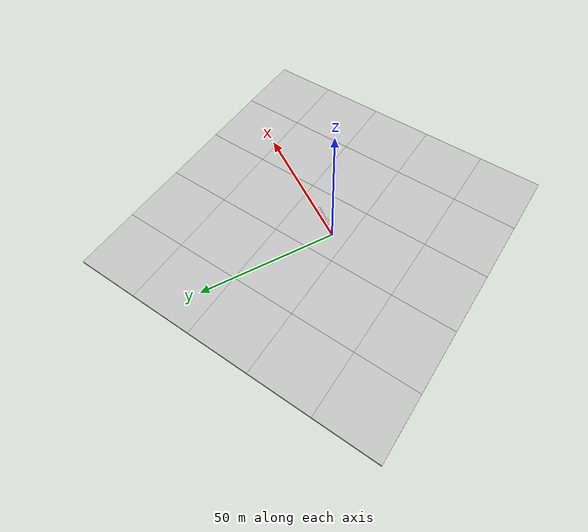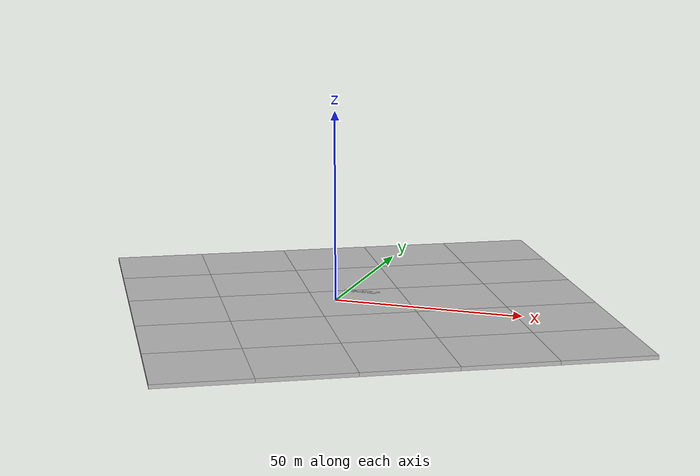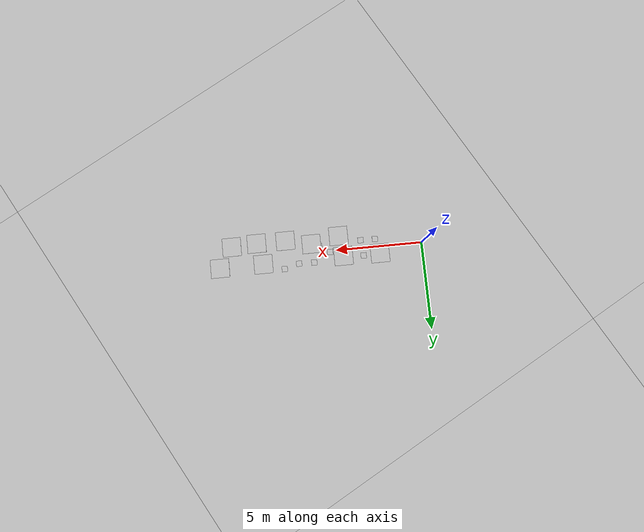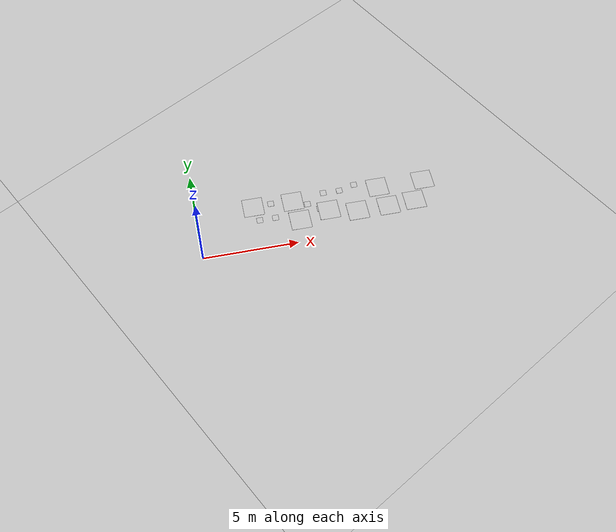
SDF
<sdf version="1.6">
 <world name="vrc_task_1">
  <scene><ambient>0.4 0.4 0.4 1</ambient><background>0.7 0.7 0.7 1</background><shadows>1</shadows></scene>
  <physics name="default_physics" default="0" type="ode">
   <ode>
    <solver>
     <type>quick</type>
     <iters>10</iters>
     <sor>1</sor>
     <use_dynamic_moi_rescaling>0</use_dynamic_moi_rescaling>
    </solver>
    <constraints>
     <cfm>0</cfm>
     <erp>0.2</erp>
     <contact_max_correcting_vel>100</contact_max_correcting_vel>
     <contact_surface_layer>0.001</contact_surface_layer>
    </constraints>
   </ode>
   <max_step_size>0.004</max_step_size>
   <real_time_factor>1</real_time_factor>
   <real_time_update_rate>250</real_time_update_rate>
  </physics>
  <light name="sun" type="directional">
   <pose>0 0 10 0 -0 0</pose>
   <diffuse>0.8 0.8 0.8 1</diffuse>
   <specular>0.2 0.2 0.2 1</specular>
   <attenuation>
    <range>1000</range>
    <constant>0.9</constant>
    <linear>0.01</linear>
    <quadratic>0.001</quadratic>
   </attenuation>
   <direction>-0.5 0.1 -0.9</direction>
  </light>
  <gravity>0 0 -9.8066</gravity>
  <magnetic_field>6e-06 2.3e-05 -4.2e-05</magnetic_field>
  <atmosphere type="adiabatic"/>
  <spherical_coordinates>
   <surface_model>EARTH_WGS84</surface_model>
   <latitude_deg>0</latitude_deg>
   <longitude_deg>0</longitude_deg>
   <elevation>0</elevation>
   <heading_deg>0</heading_deg>
  </spherical_coordinates>
  <model name="map_satellite_1.325292_103.918908_100_100">
   <static>1</static>
   <link name="link">
    <collision name="collision">
     <pose>0 0 -0.5 0 -0 0</pose>
     <geometry><box><size>119.401 119.401 1</size></box></geometry>
    </collision>
    <visual name="visual0_0">
     <pose>-47.7604 47.7604 -0.5 0 -0 1.5708</pose>
     <geometry><box><size>23.8802 23.8802 1</size></box></geometry>
     <material>
      <script>
       <uri>model://map_satellite_1.325292_103.918908_100_100/materials/scripts</uri>
       <uri>model://map_satellite_1.325292_103.918908_100_100/materials/textures</uri>
       <name>map_satellite_1.325292_103.918908_100_100/0_0</name>
      </script>
     </material>
    </visual>
    <visual name="visual0_1">
     <pose>-23.8802 47.7604 -0.5 0 -0 1.5708</pose>
     <geometry><box><size>23.8802 23.8802 1</size></box></geometry>
     <material>
      <script>
       <uri>model://map_satellite_1.325292_103.918908_100_100/materials/scripts</uri>
       <uri>model://map_satellite_1.325292_103.918908_100_100/materials/textures</uri>
       <name>map_satellite_1.325292_103.918908_100_100/0_1</name>
      </script>
     </material>
    </visual>
    <visual name="visual0_2">
     <pose>0 47.7604 -0.5 0 -0 1.5708</pose>
     <geometry><box><size>23.8802 23.8802 1</size></box></geometry>
     <material>
      <script>
       <uri>model://map_satellite_1.325292_103.918908_100_100/materials/scripts</uri>
       <uri>model://map_satellite_1.325292_103.918908_100_100/materials/textures</uri>
       <name>map_satellite_1.325292_103.918908_100_100/0_2</name>
      </script>
     </material>
    </visual>
    <visual name="visual0_3">
     <pose>23.8802 47.7604 -0.5 0 -0 1.5708</pose>
     <geometry><box><size>23.8802 23.8802 1</size></box></geometry>
     <material>
      <script>
       <uri>model://map_satellite_1.325292_103.918908_100_100/materials/scripts</uri>
       <uri>model://map_satellite_1.325292_103.918908_100_100/materials/textures</uri>
       <name>map_satellite_1.325292_103.918908_100_100/0_3</name>
      </script>
     </material>
    </visual>
    <visual name="visual0_4">
     <pose>47.7604 47.7604 -0.5 0 -0 1.5708</pose>
     <geometry><box><size>23.8802 23.8802 1</size></box></geometry>
     <material>
      <script>
       <uri>model://map_satellite_1.325292_103.918908_100_100/materials/scripts</uri>
       <uri>model://map_satellite_1.325292_103.918908_100_100/materials/textures</uri>
       <name>map_satellite_1.325292_103.918908_100_100/0_4</name>
      </script>
     </material>
    </visual>
    <visual name="visual1_0">
     <pose>-47.7604 23.8802 -0.5 0 -0 1.5708</pose>
     <geometry><box><size>23.8802 23.8802 1</size></box></geometry>
     <material>
      <script>
       <uri>model://map_satellite_1.325292_103.918908_100_100/materials/scripts</uri>
       <uri>model://map_satellite_1.325292_103.918908_100_100/materials/textures</uri>
       <name>map_satellite_1.325292_103.918908_100_100/1_0</name>
      </script>
     </material>
    </visual>
    <visual name="visual1_1">
     <pose>-23.8802 23.8802 -0.5 0 -0 1.5708</pose>
     <geometry><box><size>23.8802 23.8802 1</size></box></geometry>
     <material>
      <script>
       <uri>model://map_satellite_1.325292_103.918908_100_100/materials/scripts</uri>
       <uri>model://map_satellite_1.325292_103.918908_100_100/materials/textures</uri>
       <name>map_satellite_1.325292_103.918908_100_100/1_1</name>
      </script>
     </material>
    </visual>
    <visual name="visual1_2">
     <pose>0 23.8802 -0.5 0 -0 1.5708</pose>
     <geometry><box><size>23.8802 23.8802 1</size></box></geometry>
     <material>
      <script>
       <uri>model://map_satellite_1.325292_103.918908_100_100/materials/scripts</uri>
       <uri>model://map_satellite_1.325292_103.918908_100_100/materials/textures</uri>
       <name>map_satellite_1.325292_103.918908_100_100/1_2</name>
      </script>
     </material>
    </visual>
    <visual name="visual1_3">
     <pose>23.8802 23.8802 -0.5 0 -0 1.5708</pose>
     <geometry><box><size>23.8802 23.8802 1</size></box></geometry>
     <material>
      <script>
       <uri>model://map_satellite_1.325292_103.918908_100_100/materials/scripts</uri>
       <uri>model://map_satellite_1.325292_103.918908_100_100/materials/textures</uri>
       <name>map_satellite_1.325292_103.918908_100_100/1_3</name>
      </script>
     </material>
    </visual>
    <visual name="visual1_4">
     <pose>47.7604 23.8802 -0.5 0 -0 1.5708</pose>
     <geometry><box><size>23.8802 23.8802 1</size></box></geometry>
     <material>
      <script>
       <uri>model://map_satellite_1.325292_103.918908_100_100/materials/scripts</uri>
       <uri>model://map_satellite_1.325292_103.918908_100_100/materials/textures</uri>
       <name>map_satellite_1.325292_103.918908_100_100/1_4</name>
      </script>
     </material>
    </visual>
    <visual name="visual2_0">
     <pose>-47.7604 0 -0.5 0 -0 1.5708</pose>
     <geometry><box><size>23.8802 23.8802 1</size></box></geometry>
     <material>
      <script>
       <uri>model://map_satellite_1.325292_103.918908_100_100/materials/scripts</uri>
       <uri>model://map_satellite_1.325292_103.918908_100_100/materials/textures</uri>
       <name>map_satellite_1.325292_103.918908_100_100/2_0</name>
      </script>
     </material>
    </visual>
    <visual name="visual2_1">
     <pose>-23.8802 0 -0.5 0 -0 1.5708</pose>
     <geometry><box><size>23.8802 23.8802 1</size></box></geometry>
     <material>
      <script>
       <uri>model://map_satellite_1.325292_103.918908_100_100/materials/scripts</uri>
       <uri>model://map_satellite_1.325292_103.918908_100_100/materials/textures</uri>
       <name>map_satellite_1.325292_103.918908_100_100/2_1</name>
      </script>
     </material>
    </visual>
    <visual name="visual2_2">
     <pose>0 0 -0.5 0 -0 1.5708</pose>
     <geometry><box><size>23.8802 23.8802 1</size></box></geometry>
     <material>
      <script>
       <uri>model://map_satellite_1.325292_103.918908_100_100/materials/scripts</uri>
       <uri>model://map_satellite_1.325292_103.918908_100_100/materials/textures</uri>
       <name>map_satellite_1.325292_103.918908_100_100/2_2</name>
      </script>
     </material>
    </visual>
    <visual name="visual2_3">
     <pose>23.8802 0 -0.5 0 -0 1.5708</pose>
     <geometry><box><size>23.8802 23.8802 1</size></box></geometry>
     <material>
      <script>
       <uri>model://map_satellite_1.325292_103.918908_100_100/materials/scripts</uri>
       <uri>model://map_satellite_1.325292_103.918908_100_100/materials/textures</uri>
       <name>map_satellite_1.325292_103.918908_100_100/2_3</name>
      </script>
     </material>
    </visual>
    <visual name="visual2_4">
     <pose>47.7604 0 -0.5 0 -0 1.5708</pose>
     <geometry><box><size>23.8802 23.8802 1</size></box></geometry>
     <material>
      <script>
       <uri>model://map_satellite_1.325292_103.918908_100_100/materials/scripts</uri>
       <uri>model://map_satellite_1.325292_103.918908_100_100/materials/textures</uri>
       <name>map_satellite_1.325292_103.918908_100_100/2_4</name>
      </script>
     </material>
    </visual>
    <visual name="visual3_0">
     <pose>-47.7604 -23.8802 -0.5 0 -0 1.5708</pose>
     <geometry><box><size>23.8802 23.8802 1</size></box></geometry>
     <material>
      <script>
       <uri>model://map_satellite_1.325292_103.918908_100_100/materials/scripts</uri>
       <uri>model://map_satellite_1.325292_103.918908_100_100/materials/textures</uri>
       <name>map_satellite_1.325292_103.918908_100_100/3_0</name>
      </script>
     </material>
    </visual>
    <visual name="visual3_1">
     <pose>-23.8802 -23.8802 -0.5 0 -0 1.5708</pose>
     <geometry><box><size>23.8802 23.8802 1</size></box></geometry>
     <material>
      <script>
       <uri>model://map_satellite_1.325292_103.918908_100_100/materials/scripts</uri>
       <uri>model://map_satellite_1.325292_103.918908_100_100/materials/textures</uri>
       <name>map_satellite_1.325292_103.918908_100_100/3_1</name>
      </script>
     </material>
    </visual>
    <visual name="visual3_2">
     <pose>0 -23.8802 -0.5 0 -0 1.5708</pose>
     <geometry><box><size>23.8802 23.8802 1</size></box></geometry>
     <material>
      <script>
       <uri>model://map_satellite_1.325292_103.918908_100_100/materials/scripts</uri>
       <uri>model://map_satellite_1.325292_103.918908_100_100/materials/textures</uri>
       <name>map_satellite_1.325292_103.918908_100_100/3_2</name>
      </script>
     </material>
    </visual>
    <visual name="visual3_3">
     <pose>23.8802 -23.8802 -0.5 0 -0 1.5708</pose>
     <geometry><box><size>23.8802 23.8802 1</size></box></geometry>
     <material>
      <script>
       <uri>model://map_satellite_1.325292_103.918908_100_100/materials/scripts</uri>
       <uri>model://map_satellite_1.325292_103.918908_100_100/materials/textures</uri>
       <name>map_satellite_1.325292_103.918908_100_100/3_3</name>
      </script>
     </material>
    </visual>
    <visual name="visual3_4">
     <pose>47.7604 -23.8802 -0.5 0 -0 1.5708</pose>
     <geometry><box><size>23.8802 23.8802 1</size></box></geometry>
     <material>
      <script>
       <uri>model://map_satellite_1.325292_103.918908_100_100/materials/scripts</uri>
       <uri>model://map_satellite_1.325292_103.918908_100_100/materials/textures</uri>
       <name>map_satellite_1.325292_103.918908_100_100/3_4</name>
      </script>
     </material>
    </visual>
    <visual name="visual4_0">
     <pose>-47.7604 -47.7604 -0.5 0 -0 1.5708</pose>
     <geometry><box><size>23.8802 23.8802 1</size></box></geometry>
     <material>
      <script>
       <uri>model://map_satellite_1.325292_103.918908_100_100/materials/scripts</uri>
       <uri>model://map_satellite_1.325292_103.918908_100_100/materials/textures</uri>
       <name>map_satellite_1.325292_103.918908_100_100/4_0</name>
      </script>
     </material>
    </visual>
    <visual name="visual4_1">
     <pose>-23.8802 -47.7604 -0.5 0 -0 1.5708</pose>
     <geometry><box><size>23.8802 23.8802 1</size></box></geometry>
     <material>
      <script>
       <uri>model://map_satellite_1.325292_103.918908_100_100/materials/scripts</uri>
       <uri>model://map_satellite_1.325292_103.918908_100_100/materials/textures</uri>
       <name>map_satellite_1.325292_103.918908_100_100/4_1</name>
      </script>
     </material>
    </visual>
    <visual name="visual4_2">
     <pose>0 -47.7604 -0.5 0 -0 1.5708</pose>
     <geometry><box><size>23.8802 23.8802 1</size></box></geometry>
     <material>
      <script>
       <uri>model://map_satellite_1.325292_103.918908_100_100/materials/scripts</uri>
       <uri>model://map_satellite_1.325292_103.918908_100_100/materials/textures</uri>
       <name>map_satellite_1.325292_103.918908_100_100/4_2</name>
      </script>
     </material>
    </visual>
    <visual name="visual4_3">
     <pose>23.8802 -47.7604 -0.5 0 -0 1.5708</pose>
     <geometry><box><size>23.8802 23.8802 1</size></box></geometry>
     <material>
      <script>
       <uri>model://map_satellite_1.325292_103.918908_100_100/materials/scripts</uri>
       <uri>model://map_satellite_1.325292_103.918908_100_100/materials/textures</uri>
       <name>map_satellite_1.325292_103.918908_100_100/4_3</name>
      </script>
     </material>
    </visual>
    <visual name="visual4_4">
     <pose>47.7604 -47.7604 -0.5 0 -0 1.5708</pose>
     <geometry><box><size>23.8802 23.8802 1</size></box></geometry>
     <material>
      <script>
       <uri>model://map_satellite_1.325292_103.918908_100_100/materials/scripts</uri>
       <uri>model://map_satellite_1.325292_103.918908_100_100/materials/textures</uri>
       <name>map_satellite_1.325292_103.918908_100_100/4_4</name>
      </script>
     </material>
    </visual>
   </link>
   <pose>7.0064 0.656517 0 0 -0 0.507998</pose>
  </model>
  <model name="3_4">
   <static>1</static>
   <link name="link">
    <collision name="collision"><geometry><box><size>0.3 0.3 0.005</size></box></geometry></collision>
    <visual name="visual">
     <cast_shadows>0</cast_shadows>
     <geometry><box><size>0.3 0.3 0.005</size></box></geometry>
     <material>
      <script>
       <uri>model://3_4/materials/scripts</uri>
       <uri>model://3_4/materials/textures</uri>
       <name>3_4</name>
      </script>
     </material>
    </visual>
   </link>
   <pose>6.34985 0.944043 2.87108 0 -0 0</pose>
  </model>
  <model name="3_7_0">
   <static>1</static>
   <link name="link">
    <collision name="collision"><geometry><box><size>0.3 0.3 0.005</size></box></geometry></collision>
    <visual name="visual">
     <cast_shadows>0</cast_shadows>
     <geometry><box><size>0.3 0.3 0.005</size></box></geometry>
     <material>
      <script>
       <uri>model://3_7/materials/scripts</uri>
       <uri>model://3_7/materials/textures</uri>
       <name>3_7</name>
      </script>
     </material>
    </visual>
   </link>
   <pose>7.16509 0.931241 2.87078 0 -0 0</pose>
  </model>
  <model name="3_4_0">
   <static>1</static>
   <link name="link">
    <collision name="collision"><geometry><box><size>0.3 0.3 0.005</size></box></geometry></collision>
    <visual name="visual">
     <cast_shadows>0</cast_shadows>
     <geometry><box><size>0.3 0.3 0.005</size></box></geometry>
     <material>
      <script>
       <uri>model://3_4/materials/scripts</uri>
       <uri>model://3_4/materials/textures</uri>
       <name>3_4</name>
      </script>
     </material>
    </visual>
   </link>
   <pose>7.95707 1.14583 2.8573 0 -0 0</pose>
  </model>
  <model name="3_4_1">
   <static>1</static>
   <link name="link">
    <collision name="collision"><geometry><box><size>0.3 0.3 0.005</size></box></geometry></collision>
    <visual name="visual">
     <cast_shadows>0</cast_shadows>
     <geometry><box><size>0.3 0.3 0.005</size></box></geometry>
     <material>
      <script>
       <uri>model://3_4/materials/scripts</uri>
       <uri>model://3_4/materials/textures</uri>
       <name>3_4</name>
      </script>
     </material>
    </visual>
   </link>
   <pose>6.00564 0.090428 2.86351 0 -0 0</pose>
  </model>
  <model name="3_4_2">
   <static>1</static>
   <link name="link">
    <collision name="collision"><geometry><box><size>0.3 0.3 0.005</size></box></geometry></collision>
    <visual name="visual">
     <cast_shadows>0</cast_shadows>
     <geometry><box><size>0.3 0.3 0.005</size></box></geometry>
     <material>
      <script>
       <uri>model://3_4/materials/scripts</uri>
       <uri>model://3_4/materials/textures</uri>
       <name>3_4</name>
      </script>
     </material>
    </visual>
   </link>
   <pose>3.76274 -0.023803 2.86714 0 -0 0</pose>
  </model>
  <model name="3_3_0">
   <static>1</static>
   <link name="link">
    <collision name="collision"><geometry><box><size>0.3 0.3 0.005</size></box></geometry></collision>
    <visual name="visual">
     <cast_shadows>0</cast_shadows>
     <geometry><box><size>0.3 0.3 0.005</size></box></geometry>
     <material>
      <script>
       <uri>model://3_3/materials/scripts</uri>
       <uri>model://3_3/materials/textures</uri>
       <name>3_3</name>
      </script>
     </material>
    </visual>
   </link>
   <pose>5.45452 0.454755 2.86229 0 -0 0</pose>
  </model>
  <model name="3_4_3">
   <static>1</static>
   <link name="link">
    <collision name="collision"><geometry><box><size>0.3 0.3 0.005</size></box></geometry></collision>
    <visual name="visual">
     <cast_shadows>0</cast_shadows>
     <geometry><box><size>0.3 0.3 0.005</size></box></geometry>
     <material>
      <script>
       <uri>model://3_4/materials/scripts</uri>
       <uri>model://3_4/materials/textures</uri>
       <name>3_4</name>
      </script>
     </material>
    </visual>
   </link>
   <pose>3.68001 0.8115 2.8646 0 -0 0</pose>
  </model>
  <model name="3_7_2">
   <static>1</static>
   <link name="link">
    <collision name="collision"><geometry><box><size>0.3 0.3 0.005</size></box></geometry></collision>
    <visual name="visual">
     <cast_shadows>0</cast_shadows>
     <geometry><box><size>0.3 0.3 0.005</size></box></geometry>
     <material>
      <script>
       <uri>model://3_7/materials/scripts</uri>
       <uri>model://3_7/materials/textures</uri>
       <name>3_7</name>
      </script>
     </material>
    </visual>
   </link>
   <pose>2.98526 -0.023472 2.86749 0 -0 0</pose>
  </model>
  <model name="johnny_sins">
   <static>1</static>
   <link name="link">
    <collision name="collision"><geometry><box><size>1 1 0.005</size></box></geometry></collision>
    <visual name="visual">
     <cast_shadows>0</cast_shadows>
     <geometry><box><size>1 1 0.005</size></box></geometry>
     <material>
      <script>
       <uri>model://johnny_sins/materials/scripts</uri>
       <uri>model://johnny_sins/materials/textures</uri>
       <name>johnny_sins</name>
      </script>
     </material>
    </visual>
   </link>
   <pose>4.92938 -0.371292 2.87006 0 -0 0</pose>
  </model>
  <model name="johnny_sins_clone">
   <static>1</static>
   <link name="link">
    <collision name="collision"><geometry><box><size>1 1 0.005</size></box></geometry></collision>
    <visual name="visual">
     <cast_shadows>0</cast_shadows>
     <geometry><box><size>1 1 0.005</size></box></geometry>
     <material>
      <script>
       <uri>model://johnny_sins/materials/scripts</uri>
       <uri>model://johnny_sins/materials/textures</uri>
       <name>johnny_sins</name>
      </script>
     </material>
    </visual>
   </link>
   <pose>7.79498 -0.365631 2.87006 0 -0 0</pose>
  </model>
  <model name="johnny_sins_clone_0">
   <static>1</static>
   <link name="link">
    <collision name="collision"><geometry><box><size>1 1 0.005</size></box></geometry></collision>
    <visual name="visual">
     <cast_shadows>0</cast_shadows>
     <geometry><box><size>1 1 0.005</size></box></geometry>
     <material>
      <script>
       <uri>model://johnny_sins/materials/scripts</uri>
       <uri>model://johnny_sins/materials/textures</uri>
       <name>johnny_sins</name>
      </script>
     </material>
    </visual>
   </link>
   <pose>9.0753 0.787611 2.87006 0 -0 0</pose>
  </model>
  <model name="johnny_sins_clone_1">
   <static>1</static>
   <link name="link">
    <collision name="collision"><geometry><box><size>1 1 0.005</size></box></geometry></collision>
    <visual name="visual">
     <cast_shadows>0</cast_shadows>
     <geometry><box><size>1 1 0.005</size></box></geometry>
     <material>
      <script>
       <uri>model://johnny_sins/materials/scripts</uri>
       <uri>model://johnny_sins/materials/textures</uri>
       <name>johnny_sins</name>
      </script>
     </material>
    </visual>
   </link>
   <pose>6.41441 -0.0683 2.87006 0 -0 0</pose>
  </model>
  <model name="johnny_sins_clone_2">
   <static>1</static>
   <link name="link">
    <collision name="collision"><geometry><box><size>1 1 0.005</size></box></geometry></collision>
    <visual name="visual">
     <cast_shadows>0</cast_shadows>
     <geometry><box><size>1 1 0.005</size></box></geometry>
     <material>
      <script>
       <uri>model://johnny_sins/materials/scripts</uri>
       <uri>model://johnny_sins/materials/textures</uri>
       <name>johnny_sins</name>
      </script>
     </material>
    </visual>
   </link>
   <pose>9.34867 -0.362293 2.87006 0 -0 0</pose>
  </model>
  <model name="johnny_sins_clone_3">
   <static>1</static>
   <link name="link">
    <collision name="collision"><geometry><box><size>1 1 0.005</size></box></geometry></collision>
    <visual name="visual">
     <cast_shadows>0</cast_shadows>
     <geometry><box><size>1 1 0.005</size></box></geometry>
     <material>
      <script>
       <uri>model://johnny_sins/materials/scripts</uri>
       <uri>model://johnny_sins/materials/textures</uri>
       <name>johnny_sins</name>
      </script>
     </material>
    </visual>
   </link>
   <pose>11.4006 0.798722 2.87006 0 -0 0</pose>
  </model>
  <model name="johnny_sins_clone_4">
   <static>1</static>
   <link name="link">
    <collision name="collision"><geometry><box><size>1 1 0.005</size></box></geometry></collision>
    <visual name="visual">
     <cast_shadows>0</cast_shadows>
     <geometry><box><size>1 1 0.005</size></box></geometry>
     <material>
      <script>
       <uri>model://johnny_sins/materials/scripts</uri>
       <uri>model://johnny_sins/materials/textures</uri>
       <name>johnny_sins</name>
      </script>
     </material>
    </visual>
   </link>
   <pose>10.69 -0.286126 2.87006 0 -0 0</pose>
  </model>
  <model name="johnny_sins_clone_5">
   <static>1</static>
   <link name="link">
    <collision name="collision"><geometry><box><size>1 1 0.005</size></box></geometry></collision>
    <visual name="visual">
     <cast_shadows>0</cast_shadows>
     <geometry><box><size>1 1 0.005</size></box></geometry>
     <material>
      <script>
       <uri>model://johnny_sins/materials/scripts</uri>
       <uri>model://johnny_sins/materials/textures</uri>
       <name>johnny_sins</name>
      </script>
     </material>
    </visual>
   </link>
   <pose>2.7926 0.76767 2.87006 0 -0 0</pose>
  </model>
  <model name="johnny_sins_clone_6">
   <static>1</static>
   <link name="link">
    <collision name="collision"><geometry><box><size>1 1 0.005</size></box></geometry></collision>
    <visual name="visual">
     <cast_shadows>0</cast_shadows>
     <geometry><box><size>1 1 0.005</size></box></geometry>
     <material>
      <script>
       <uri>model://johnny_sins/materials/scripts</uri>
       <uri>model://johnny_sins/materials/textures</uri>
       <name>johnny_sins</name>
      </script>
     </material>
    </visual>
   </link>
   <pose>4.76079 0.737798 2.87006 0 -0 0</pose>
  </model>
 </world>
</sdf>
